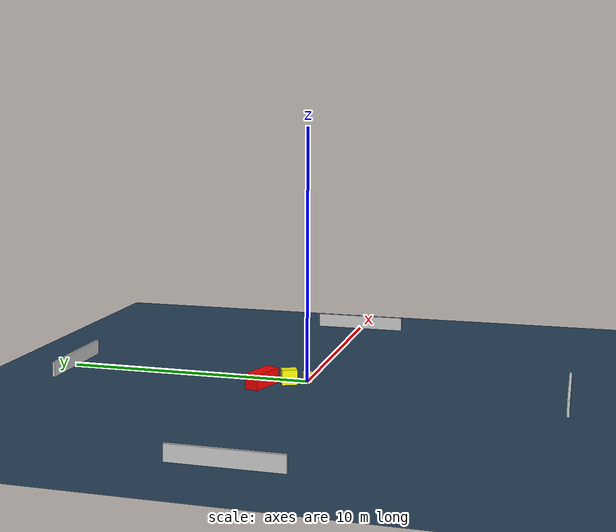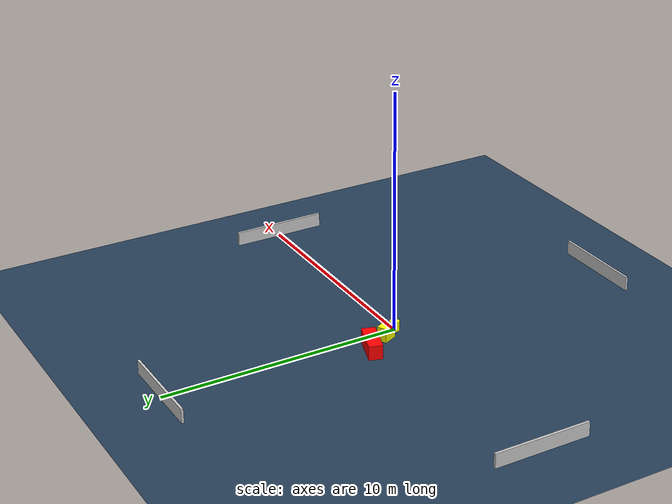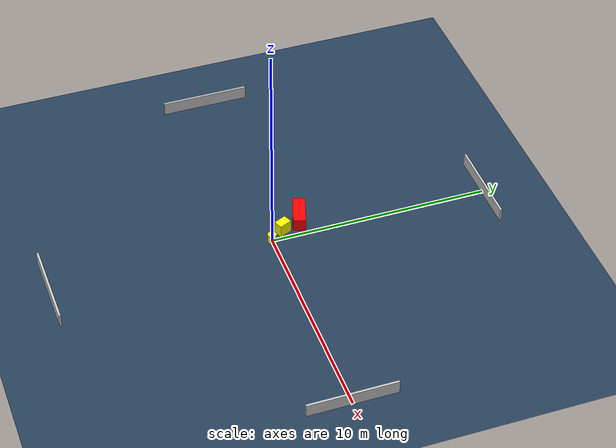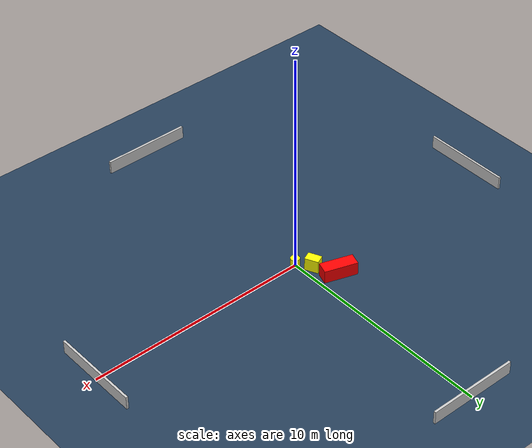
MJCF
<?xml version="1.0" ?>
<mujoco model="generated_environment">
  <option timestep="0.01" integrator="RK4" cone="elliptic"/>
  <default>
    <geom density="1"/>
  </default>
  <asset>
    <texture builtin="gradient" height="3072" name="skybox" rgb1="0.3 0.5 0.7" rgb2="0 0 0" type="skybox" width="512"/>
    <texture builtin="checker" height="300" name="groundplane" rgb1="0.2 0.3 0.4" rgb2="0.1 0.2 0.3" type="2d" width="300"/>
    <material name="groundplane" reflectance="0.2" texrepeat="5 5" texture="groundplane"/>
  </asset>
  <worldbody>
    <light dir="0 0 -1" directional="true" pos="0 0 1.5"/>
    <geom condim="3" friction="0.5 0.005 0.001" material="groundplane" name="floor" pos="0 0 0" size="0 0 0.05" type="plane"/>
    <body name="walls">
      <geom name="wall_1" condim="4" pos="-10.0 0.0 0.3" rgba="0.800000011920929 0.800000011920929 0.800000011920929 1.0" size="0.05 2.0 0.3" type="box"/>
      <geom name="wall_2" condim="4" pos="10.0 0.0 0.3" rgba="0.800000011920929 0.800000011920929 0.800000011920929 1.0" size="0.05 2.0 0.3" type="box"/>
      <geom name="wall_3" condim="4" pos="0.0 -10.0 0.3" rgba="0.800000011920929 0.800000011920929 0.800000011920929 1.0" size="2.0 0.05 0.3" type="box"/>
      <geom name="wall_4" condim="4" pos="0.0 10.0 0.3" rgba="0.800000011920929 0.800000011920929 0.800000011920929 1.0" size="2.0 0.05 0.3" type="box"/>
    </body>
    <body name="robot">
      <joint name="joint_x" type="slide" pos="0 0 0" axis="1 0 0"/>
      <joint name="joint_y" type="slide" pos="0 0 0" axis="0 1 0"/>
      <geom name="robot" type="cylinder" pos="0.0 0.0 0.2" size="0.2 0.2 0.0" mass="5.0" friction="1.0 0.005 0.0001" condim="4" rgba="1.0 1.0 0.0 1.0"/>
    </body>
    <body name="obstacle_1_movable">
      <geom name="obstacle_1_movable" condim="4" pos="-0.42676648888887375 0.6367767018658044 0.3" euler="0 0 294.7291020901004" friction="0.0 0.005 0.001" rgba="1.0 1.0 0.0 1.0" size="0.3055875821901203 0.21061717744484024 0.3" type="box" mass="0.1"/>
      <joint type="free"/>
    </body>
    <body name="obstacle_2_static">
      <geom name="obstacle_2_static" condim="4" pos="-0.9545377896887532 1.579560764232315 0.3" euler="0 0 71.71906425161693" friction="0.0 0.005 0.001" rgba="1.0 0.0 0.0 1.0" size="0.28490971405816545 0.7398495470229753 0.3" type="box"/>
    </body>
  </worldbody>
  <actuator>
    <motor name="actuator_x" joint="joint_x" gear="1" ctrlrange="-1 1"/>
    <motor name="actuator_y" joint="joint_y" gear="1" ctrlrange="-1 1"/>
  </actuator>
</mujoco>
